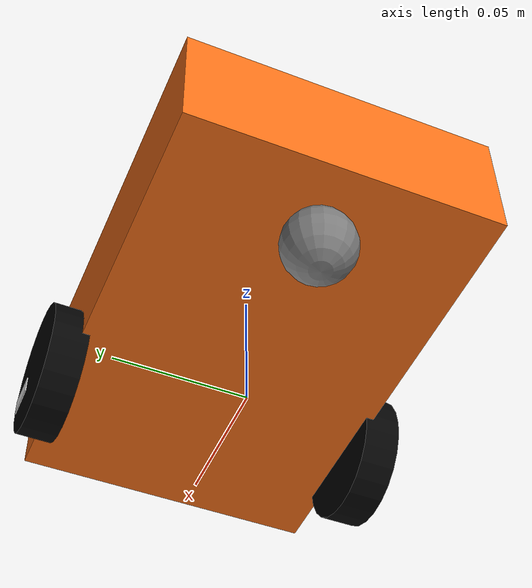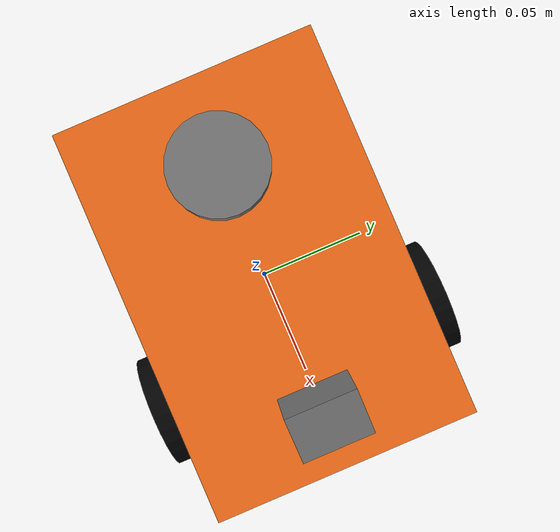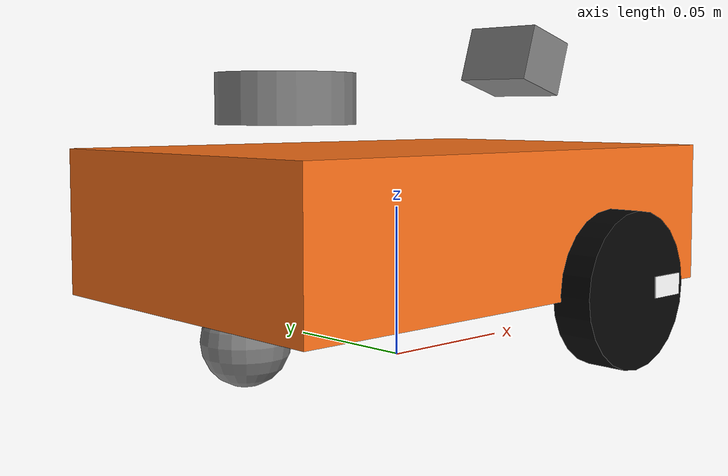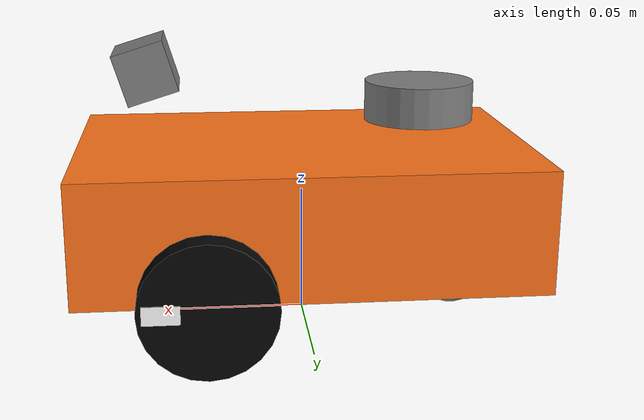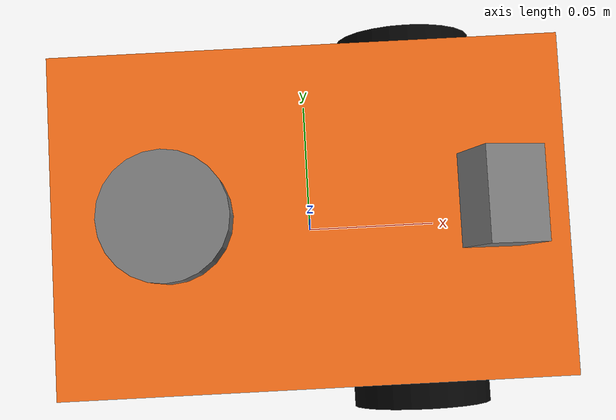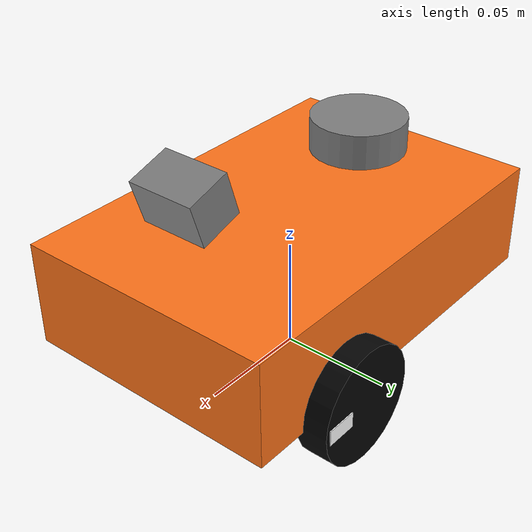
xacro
<?xml version="1.0"?>
<robot name="wall_bot" xmlns:xacro="http://www.ros.org/wiki/xacro">

  <!-- Basic dimensions -->

  <!-- Scale the original wall bot down so its footprint is close to LazyGo. -->
  <xacro:property name="model_scale" value="0.39"/>

  <xacro:property name="base_length" value="${0.45 * model_scale}"/>
  <xacro:property name="base_width"  value="${0.30 * model_scale}"/>
  <xacro:property name="base_height" value="${0.12 * model_scale}"/>

  <xacro:property name="wheel_radius" value="${0.065 * model_scale}"/>
  <xacro:property name="wheel_width"  value="${0.035 * model_scale}"/>

  <xacro:property name="wheel_separation" value="${0.32 * model_scale}"/>
  <xacro:property name="wheel_diameter" value="${0.13 * model_scale}"/>

  <xacro:property name="base_origin_z" value="${0.12 * model_scale}"/>
  <xacro:property name="wheel_x_offset" value="${0.10 * model_scale}"/>
  <xacro:property name="wheel_marker_length" value="${0.035 * model_scale}"/>
  <xacro:property name="wheel_marker_width" value="${0.002 * model_scale}"/>
  <xacro:property name="wheel_marker_height" value="${0.018 * model_scale}"/>
  <xacro:property name="caster_radius" value="${0.035 * model_scale}"/>
  <xacro:property name="caster_x_offset" value="${-0.16 * model_scale}"/>
  <xacro:property name="laser_radius" value="${0.055 * model_scale}"/>
  <xacro:property name="laser_length" value="${0.04 * model_scale}"/>
  <xacro:property name="laser_x_offset" value="${-0.12 * model_scale}"/>
  <xacro:property name="laser_z_offset" value="${0.22 * model_scale}"/>

  <xacro:property name="camera_x_offset" value="0.06"/>
  <xacro:property name="camera_y_offset" value="0.0"/>
  <xacro:property name="camera_z_offset" value="0.10"/>
  <xacro:property name="camera_pitch" value="0.3"/>

  <!-- Materials -->

  <material name="orange">
    <color rgba="1.0 0.45 0.1 1.0"/>
  </material>

  <material name="black">
    <color rgba="0.02 0.02 0.02 1.0"/>
  </material>

  <material name="gray">
    <color rgba="0.5 0.5 0.5 1.0"/>
  </material>

  <material name="white">
    <color rgba="1.0 1.0 1.0 1.0"/>
  </material>

  <!-- Base footprint / base link -->

  <!-- Keep an inertialess root so robot_state_publisher / KDL stay happy. -->
  <link name="base_footprint"/>

  <joint name="base_footprint_joint" type="fixed">
    <parent link="base_footprint"/>
    <child link="base_link"/>
    <origin xyz="0 0 0" rpy="0 0 0"/>
  </joint>

  <link name="base_link">
    <visual>
      <origin xyz="0 0 ${base_origin_z}" rpy="0 0 0"/>
      <geometry>
        <box size="${base_length} ${base_width} ${base_height}"/>
      </geometry>
      <material name="orange"/>
    </visual>

    <collision>
      <origin xyz="0 0 ${base_origin_z}" rpy="0 0 0"/>
      <geometry>
        <box size="${base_length} ${base_width} ${base_height}"/>
      </geometry>
    </collision>

    <inertial>
      <origin xyz="0 0 ${base_origin_z}" rpy="0 0 0"/>
      <mass value="2.0"/>
      <inertia
        ixx="0.03" ixy="0.0" ixz="0.0"
        iyy="0.03" iyz="0.0"
        izz="0.04"/>
    </inertial>
  </link>

  <!-- Left wheel -->

  <link name="left_wheel_link">
    <visual>
      <origin xyz="0 0 0" rpy="1.5708 0 0"/>
      <geometry>
        <cylinder radius="${wheel_radius}" length="${wheel_width}"/>
      </geometry>
      <material name="black"/>
    </visual>

    <collision>
      <origin xyz="0 0 0" rpy="1.5708 0 0"/>
      <geometry>
        <cylinder radius="${wheel_radius}" length="${wheel_width}"/>
      </geometry>
    </collision>

    <inertial>
      <mass value="0.2"/>
      <inertia
        ixx="0.001" ixy="0.0" ixz="0.0"
        iyy="0.001" iyz="0.0"
        izz="0.001"/>
    </inertial>
  </link>

  <joint name="left_wheel_joint" type="continuous">
    <parent link="base_link"/>
    <child link="left_wheel_link"/>
    <origin xyz="${wheel_x_offset} ${wheel_separation/2} ${wheel_radius}" rpy="0 0 0"/>
    <axis xyz="0 1 0"/>
  </joint>

  <!-- Left wheel rotation marker -->
<link name="left_wheel_marker_link">
  <visual>
    <origin xyz="0 0 0" rpy="0 0 0"/>
    <geometry>
      <box size="${wheel_marker_length} ${wheel_marker_width} ${wheel_marker_height}"/>
    </geometry>
    <material name="white"/>
  </visual>
</link>

<joint name="left_wheel_marker_joint" type="fixed">
  <parent link="left_wheel_link"/>
  <child link="left_wheel_marker_link"/>
  <origin xyz="${wheel_radius*0.65} ${wheel_width/2 } 0" rpy="0 0 0"/>
</joint>

  <!-- Right wheel -->

  <link name="right_wheel_link">
    <visual>
      <origin xyz="0 0 0" rpy="1.5708 0 0"/>
      <geometry>
        <cylinder radius="${wheel_radius}" length="${wheel_width}"/>
      </geometry>
      <material name="black"/>
    </visual>

    <collision>
      <origin xyz="0 0 0" rpy="1.5708 0 0"/>
      <geometry>
        <cylinder radius="${wheel_radius}" length="${wheel_width}"/>
      </geometry>
    </collision>

    <inertial>
      <mass value="0.2"/>
      <inertia
        ixx="0.001" ixy="0.0" ixz="0.0"
        iyy="0.001" iyz="0.0"
        izz="0.001"/>
    </inertial>
  </link>

  <joint name="right_wheel_joint" type="continuous">
    <parent link="base_link"/>
    <child link="right_wheel_link"/>
    <origin xyz="${wheel_x_offset} -${wheel_separation/2} ${wheel_radius}" rpy="0 0 0"/>
    <axis xyz="0 1 0"/>
  </joint>

  <!-- Right wheel rotation marker -->
<link name="right_wheel_marker_link">
  <visual>
    <origin xyz="0 0 0" rpy="0 0 0"/>
    <geometry>
      <box size="${wheel_marker_length} ${wheel_marker_width} ${wheel_marker_height}"/>
    </geometry>
    <material name="white"/>
  </visual>
</link>

<joint name="right_wheel_marker_joint" type="fixed">
  <parent link="right_wheel_link"/>
  <child link="right_wheel_marker_link"/>
  <origin xyz="${wheel_radius*0.65} -${wheel_width/2} 0" rpy="0 0 0"/>
</joint>

  <!-- Caster wheel -->

  <link name="caster_link">
    <visual>
      <origin xyz="0 0 0" rpy="0 0 0"/>
      <geometry>
        <sphere radius="${caster_radius}"/>
      </geometry>
      <material name="gray"/>
    </visual>

    <collision>
      <origin xyz="0 0 0" rpy="0 0 0"/>
      <geometry>
        <sphere radius="${caster_radius}"/>
      </geometry>
    </collision>

    <inertial>
      <mass value="0.05"/>
      <inertia
        ixx="0.0001" ixy="0.0" ixz="0.0"
        iyy="0.0001" iyz="0.0"
        izz="0.0001"/>
    </inertial>
  </link>

  <joint name="caster_joint" type="fixed">
    <parent link="base_link"/>
    <child link="caster_link"/>
    <origin xyz="${caster_x_offset} 0 ${caster_radius}" rpy="0 0 0"/>
  </joint>

  <!-- LiDAR -->

  <link name="laser_link">
    <visual>
      <origin xyz="0 0 0" rpy="0 0 0"/>
      <geometry>
        <cylinder radius="${laser_radius}" length="${laser_length}"/>
      </geometry>
      <material name="gray"/>
    </visual>

    <collision>
      <origin xyz="0 0 0" rpy="0 0 0"/>
      <geometry>
        <cylinder radius="${laser_radius}" length="${laser_length}"/>
      </geometry>
    </collision>

    <inertial>
      <mass value="0.1"/>
      <inertia
        ixx="0.0002" ixy="0.0" ixz="0.0"
        iyy="0.0002" iyz="0.0"
        izz="0.0002"/>
    </inertial>
  </link>

  <joint name="laser_joint" type="fixed">
    <parent link="base_link"/>
    <child link="laser_link"/>
    <origin xyz="${laser_x_offset} 0 ${laser_z_offset}" rpy="0 0 0"/>
  </joint>

  <!-- CAMERA -->

  <link name="camera_link">
    <visual>
      <geometry>
        <box size="0.02 0.03 0.02"/>
      </geometry>
      <material name="gray"/>
    </visual>
  </link>

  <joint name="camera_joint" type="fixed">
    <parent link="base_link"/>
    <child link="camera_link"/>
    <origin xyz="${camera_x_offset} ${camera_y_offset} ${camera_z_offset}"
            rpy="0 ${camera_pitch} 0"/>
  </joint>

  <link name="camera_link_optical"/>

  <joint name="camera_optical_joint" type="fixed">
    <parent link="camera_link"/>
    <child link="camera_link_optical"/>
    <origin xyz="0 0 0" rpy="${-pi/2} 0 ${-pi/2}"/>
  </joint>

  <!-- Gazebo material/friction -->

  <gazebo reference="base_link">
    <material>Gazebo/Orange</material>
  </gazebo>

  <gazebo reference="left_wheel_link">
    <material>Gazebo/Black</material>
    <mu1>20.0</mu1>
    <mu2>20.0</mu2>
    <slip1>0.0</slip1>
    <slip2>0.0</slip2>
  </gazebo>

  <gazebo reference="right_wheel_link">
    <material>Gazebo/Black</material>
    <mu1>20.0</mu1>
    <mu2>20.0</mu2>
    <slip1>0.0</slip1>
    <slip2>0.0</slip2>
  </gazebo>

  <!-- Keep the caster easy to skid so it does not fight differential turns. -->
  <gazebo reference="caster_link">
    <material>Gazebo/Grey</material>
    <mu1>0.05</mu1>
    <mu2>0.05</mu2>
    <slip1>1.0</slip1>
    <slip2>1.0</slip2>
  </gazebo>

  <!-- Gazebo Sim differential drive -->

  <gazebo>
    <plugin
      filename="ignition-gazebo-diff-drive-system"
      name="gz::sim::systems::DiffDrive">

      <left_joint>left_wheel_joint</left_joint>
      <right_joint>right_wheel_joint</right_joint>

      <wheel_separation>${wheel_separation}</wheel_separation>
      <wheel_radius>${wheel_radius}</wheel_radius>

      <odom_publish_frequency>100</odom_publish_frequency>

      <topic>cmd_vel</topic>
      <odom_topic>odom</odom_topic>
      <tf_topic>tf</tf_topic>
      <frame_id>odom</frame_id>
      <child_frame_id>base_footprint</child_frame_id>

      <max_linear_acceleration>1.0</max_linear_acceleration>
      <min_linear_acceleration>-1.0</min_linear_acceleration>
      <max_angular_acceleration>3.0</max_angular_acceleration>
      <min_angular_acceleration>-3.0</min_angular_acceleration>
      <max_linear_velocity>1.0</max_linear_velocity>
      <min_linear_velocity>-1.0</min_linear_velocity>
      <max_angular_velocity>3.0</max_angular_velocity>
      <min_angular_velocity>-3.0</min_angular_velocity>
    </plugin>
  </gazebo>

  <!-- Gazebo Sim joint states -->

  <gazebo>
    <plugin
      filename="ignition-gazebo-joint-state-publisher-system"
      name="gz::sim::systems::JointStatePublisher">
      <topic>joint_states</topic>
      <joint_name>left_wheel_joint</joint_name>
      <joint_name>right_wheel_joint</joint_name>
    </plugin>
  </gazebo>

  <!-- Gazebo Sim LiDAR -->

  <gazebo reference="laser_link">
    <sensor name="lidar_sensor" type="gpu_lidar">
      <topic>scan</topic>
      <update_rate>10</update_rate>
      <always_on>true</always_on>
      <visualize>false</visualize>

      <lidar>
        <scan>
          <horizontal>
            <samples>360</samples>
            <resolution>1</resolution>
            <min_angle>-3.14159</min_angle>
            <max_angle>3.14159</max_angle>
          </horizontal>
        </scan>

        <range>
          <min>0.12</min>
          <max>8.0</max>
          <resolution>0.01</resolution>
        </range>

        <noise>
          <type>gaussian</type>
          <mean>0.0</mean>
          <stddev>0.01</stddev>
        </noise>
      </lidar>
    </sensor>
  </gazebo>

</robot>
